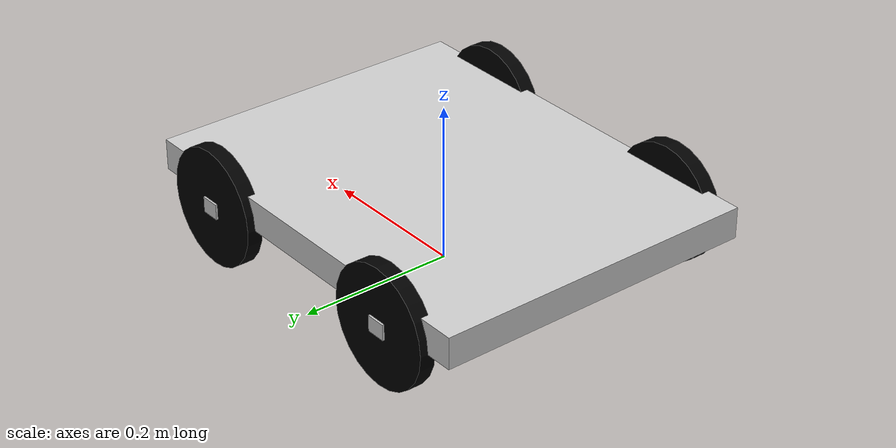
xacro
<?xml version="1.0"?>
<robot xmlns:xacro="http://www.ros.org/wiki/xacro" >
    <xacro:include filename="inertial_macros.xacro"/>
    <material name="white">
        <color rgba="1 1 1 1" />
    </material>

    <material name="red">
        <color rgba="1 0 0 1"/>
    </material>

    <material name="orange">
        <color rgba="1 0.3 0.1 1"/>
    </material>

    <material name="blue">
        <color rgba="0.2 0.2 1 1"/>
    </material>

    <material name="black">
        <color rgba="0 0 0 1"/>
    </material>

    <material name = "silver">
        <color rgba="0.8 0.8 0.8 1"/>
    </material>
    <!---base link-->

    <link name = "base_link">
    </link>

    <!--chassis link-->

    <joint name = "base_footprint_joint" type = "fixed">
        <parent link = "base_link"/>
        <child link = "base_footprint"/>
        <origin xyz = "0 0 0" rpy="0 0 0"/>
    </joint>

    <link name = "base_footprint">
    </link>

    <joint name = "chassis_joint" type = "fixed">
        <parent link = "base_link"/>
        <child link = "chassis"/>
        <origin xyz = "0 0 0.095" rpy="0 0 0"/>
    </joint>

    <link name = "chassis">
        <visual>
            <origin xyz = "0 0 0" rpy="0 0 0"/>
            <geometry>
                <box size="0.54 0.42 0.04"/>
            </geometry>
            <material name = "silver"/>
        </visual>
        <collision>
            <origin xyz = "0 0 0" rpy="0 0 0"/>
            <geometry>
                <box size = "0.54 0.42 0.04"/>
            </geometry>
        </collision>
        <xacro:inertial_box mass="2.5" x ="0.54" y="0.42" z="0.0">
            <origin xyz = "0 0 0" rpy="0 0 0"/>
        </xacro:inertial_box>
    </link>

    <gazebo reference="chassis">
        <material>Gazebo/Silver</material>
        <mu1>0.2</mu1>
        <mu2>0.2</mu2>
    </gazebo>

    <!-- wheel fl full module -->
    <joint name = "chassis_motor_fl" type = "fixed">
        <parent link = "chassis"/>
        <child link = "motor_fl"/>
        <origin xyz = "0.16 0.21 -0.020" rpy="0 0 0"/>
    </joint>

    <link name = "motor_fl">
        <visual>
            <origin xyz = "0 0 0" rpy="0 0 0"/>
            <geometry>
                <box size="0.025 0.025 0.020"/>
            </geometry>
            <material name = "silver"/>
        </visual>
        <collision>
            <origin xyz = "0 0 0" rpy="0 0 0"/>
            <geometry>
                <box size = "0.025 0.025 0.020"/>
            </geometry>
        </collision>
        <xacro:inertial_box mass="0.5" x ="0.025" y="0.025" z="0.020">
            <origin xyz = "0 0 0" rpy="0 0 0"/>
        </xacro:inertial_box>
    </link>

    <joint name = "motor_fl_wheel" type = "continuous">
        <parent link = "motor_fl"/>
        <child link = "wheel_fl"/>
        <origin xyz = "0 0 0" rpy="-${pi/2} 0 0"/>
        <axis xyz = "0 0 1"/>
    </joint>

    <link name = "wheel_fl">
        <visual>
            <origin xyz = "0 0 0" rpy="0 0 0"/>
            <geometry>
                <cylinder radius="0.075" length="0.02"/>
            </geometry>
            <material name = "black"/>
        </visual>
        <collision>
            <origin xyz = "0 0 0" rpy="0 0 0"/>
            <geometry>
                <cylinder radius="0.075" length="0.02"/>
            </geometry>
        </collision>
        <xacro:inertial_cylinder mass="0.1" length="0.02" radius="0.075">
            <origin xyz = "0 0 0" rpy="0 0 0"/>
        </xacro:inertial_cylinder>
    </link>

    <gazebo reference="wheel_fl">
        <material>Gazebo/Black</material>
        <mu1>0.2</mu1>
        <mu2>0.2</mu2>
    </gazebo>

    <!-- wheel fr full module -->
    <joint name = "chassis_motor_fr" type = "fixed">
        <parent link = "chassis"/>
        <child link = "motor_fr"/>
        <origin xyz = "0.16 -0.21 -0.020" rpy="0 0 0"/>
    </joint>

    <link name = "motor_fr">
        <visual>
            <origin xyz = "0 0 0" rpy="0 0 0"/>
            <geometry>
                <box size="0.025 0.025 0.020"/>
            </geometry>
            <material name = "silver"/>
        </visual>
        <collision>
            <origin xyz = "0 0 0" rpy="0 0 0"/>
            <geometry>
                <box size = "0.025 0.025 0.020"/>
            </geometry>
        </collision>
        <xacro:inertial_box mass="0.5" x ="0.025" y="0.025" z="0.020">
            <origin xyz = "0 0 0" rpy="0 0 0"/>
        </xacro:inertial_box>
    </link>

    <joint name = "motor_fr_wheel" type = "continuous">
        <parent link = "motor_fr"/>
        <child link = "wheel_fr"/>
        <origin xyz = "0 0 0" rpy="${pi/2} 0 0"/>
        <axis xyz = "0 0 -1"/>
    </joint>

    <link name = "wheel_fr">
        <visual>
            <origin xyz = "0 0 0" rpy="0 0 0"/>
            <geometry>
                <cylinder radius="0.075" length="0.02"/>
            </geometry>
            <material name = "black"/>
        </visual>
        <collision>
            <origin xyz = "0 0 0" rpy="0 0 0"/>
            <geometry>
                <cylinder radius="0.075" length="0.02"/>
            </geometry>
        </collision>
        <xacro:inertial_cylinder mass="0.1" length="0.02" radius="0.075">
            <origin xyz = "0 0 0" rpy="0 0 0"/>
        </xacro:inertial_cylinder>
    </link>

    <gazebo reference="wheel_fr">
        <material>Gazebo/Black</material>
        <mu1>0.2</mu1>
        <mu2>0.2</mu2>
    </gazebo>

    <!-- wheel bl full module -->
    <joint name = "chassis_motor_bl" type = "fixed">
        <parent link = "chassis"/>
        <child link = "motor_bl"/>
        <origin xyz = "-0.16 0.21 -0.020" rpy="0 0 0"/>
    </joint>

    <link name = "motor_bl">
        <visual>
            <origin xyz = "0 0 0" rpy="0 0 0"/>
            <geometry>
                <box size="0.025 0.025 0.020"/>
            </geometry>
            <material name = "silver"/>
        </visual>
        <collision>
            <origin xyz = "0 0 0" rpy="0 0 0"/>
            <geometry>
                <box size = "0.025 0.025 0.020"/>
            </geometry>
        </collision>
        <xacro:inertial_box mass="0.5" x ="0.025" y="0.025" z="0.020">
            <origin xyz = "0 0 0" rpy="0 0 0"/>
        </xacro:inertial_box>
    </link>

    <joint name = "motor_bl_wheel" type = "continuous">
        <parent link = "motor_bl"/>
        <child link = "wheel_bl"/>
        <origin xyz = "0 0 0" rpy="-${pi/2} 0 0"/>
        <axis xyz = "0 0 1"/>
    </joint>

    <link name = "wheel_bl">
        <visual>
            <origin xyz = "0 0 0" rpy="0 0 0"/>
            <geometry>
                <cylinder radius="0.075" length="0.02"/>
            </geometry>
            <material name = "black"/>
        </visual>
        <collision>
            <origin xyz = "0 0 0" rpy="0 0 0"/>
            <geometry>
                <cylinder radius="0.075" length="0.02"/>
            </geometry>
        </collision>
        <xacro:inertial_cylinder mass="0.1" length="0.02" radius="0.075">
            <origin xyz = "0 0 0" rpy="0 0 0"/>
        </xacro:inertial_cylinder>
    </link>

    <gazebo reference="wheel_bl">
        <material>Gazebo/Black</material>
        <mu1>0.2</mu1>
        <mu2>0.2</mu2>
    </gazebo>

    <!-- wheel br full module -->
     <joint name = "chassis_motor_br" type = "fixed">
        <parent link = "chassis"/>
        <child link = "motor_br"/>
        <origin xyz = "-0.16 -0.21 -0.020" rpy="0 0 0"/>
    </joint>

    <link name = "motor_br">
        <visual>
            <origin xyz = "0 0 0" rpy="0 0 0"/>
            <geometry>
                <box size="0.025 0.025 0.020"/>
            </geometry>
            <material name = "silver"/>
        </visual>
        <collision>
            <origin xyz = "0 0 0" rpy="0 0 0"/>
            <geometry>
                <box size = "0.025 0.025 0.020"/>
            </geometry>
        </collision>
        <xacro:inertial_box mass="0.5" x ="0.025" y="0.025" z="0.020">
            <origin xyz = "0 0 0" rpy="0 0 0"/>
        </xacro:inertial_box>
    </link>

    <joint name = "motor_br_wheel" type = "continuous">
        <parent link = "motor_br"/>
        <child link = "wheel_br"/>
        <origin xyz = "0 0 0" rpy="${pi/2} 0 0"/>
        <axis xyz = "0 0 -1"/>
    </joint>

    <link name = "wheel_br">
        <visual>
            <origin xyz = "0 0 0" rpy="0 0 0"/>
            <geometry>
                <cylinder radius="0.075" length="0.02"/>
            </geometry>
            <material name = "black"/>
        </visual>
        <collision>
            <origin xyz = "0 0 0" rpy="0 0 0"/>
            <geometry>
                <cylinder radius="0.075" length="0.02"/>
            </geometry>
        </collision>
        <xacro:inertial_cylinder mass="0.1" length="0.02" radius="0.075">
            <origin xyz = "0 0 0" rpy="0 0 0"/>
        </xacro:inertial_cylinder>
    </link>
    <gazebo reference="wheel_br">
        <material>Gazebo/Black</material>
        <mu1>0.2</mu1>
        <mu2>0.2</mu2>
    </gazebo>

    <!--                        end                            -->

</robot>
